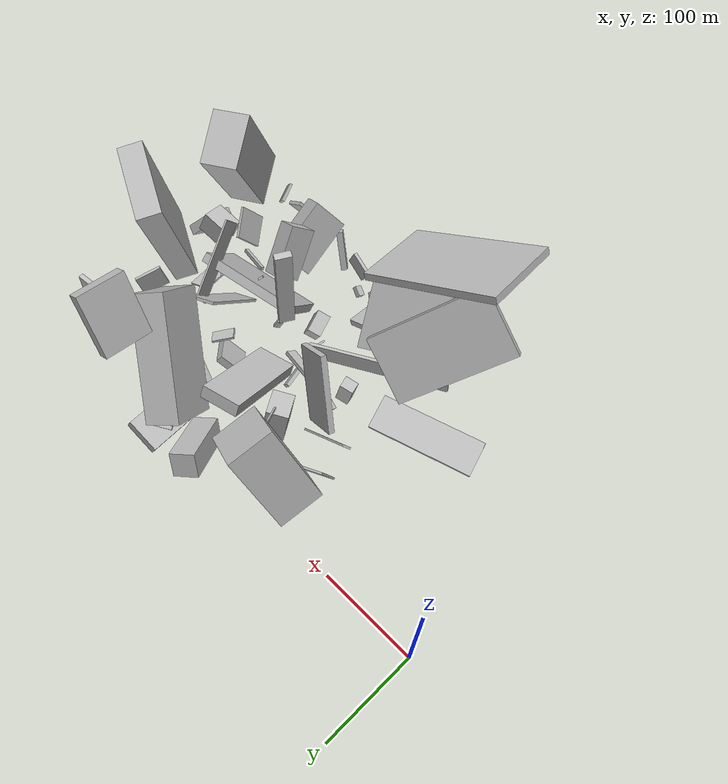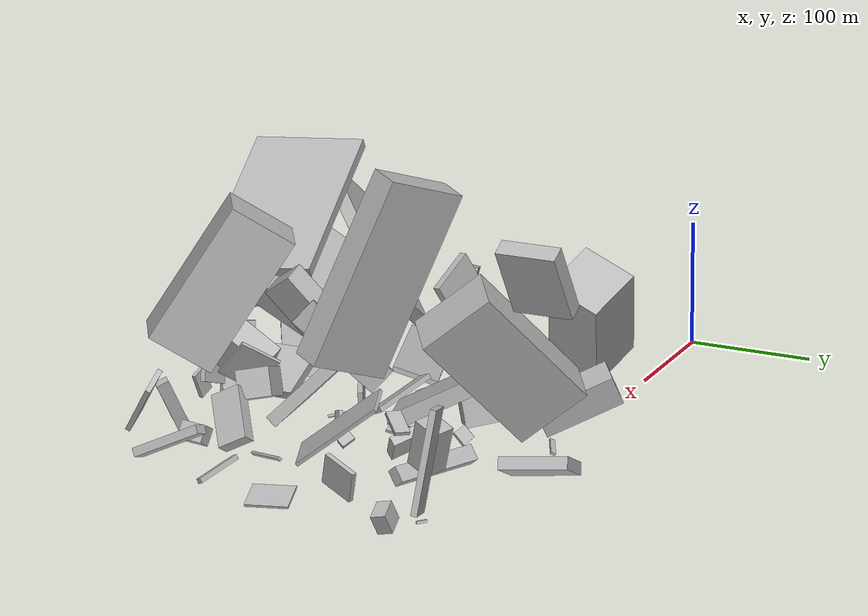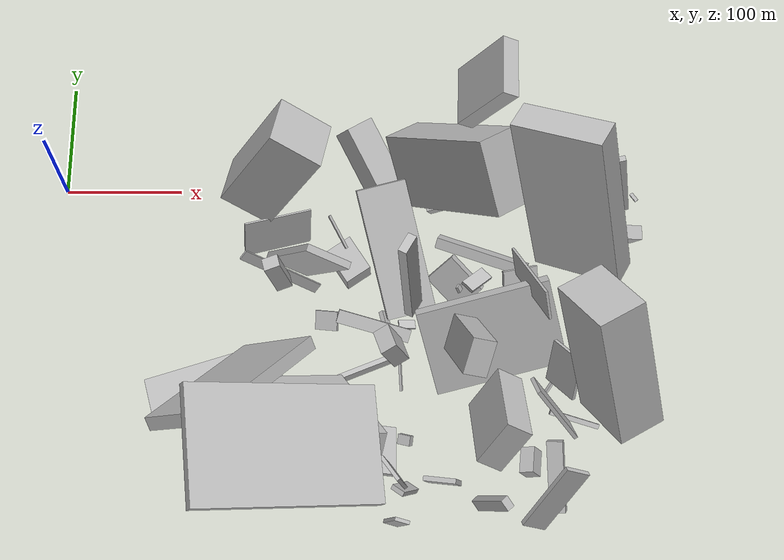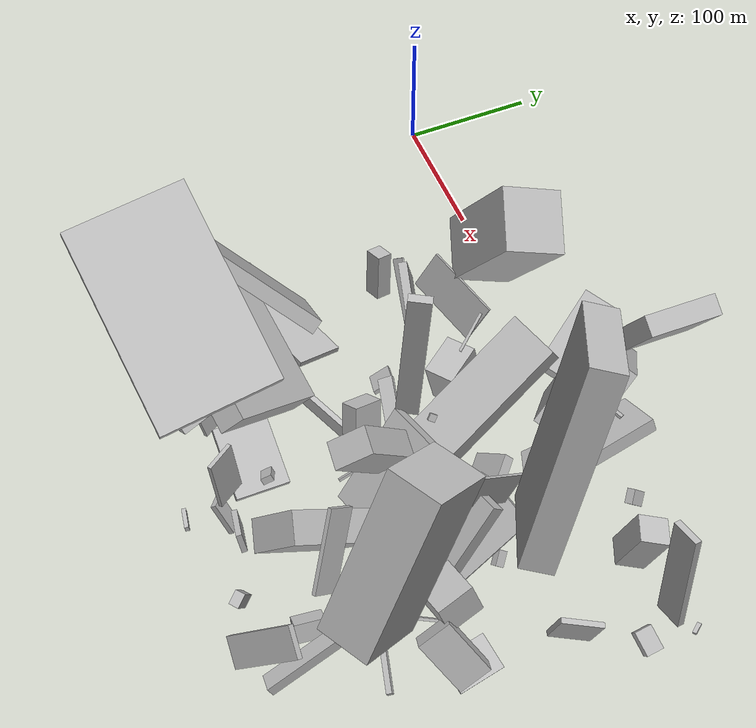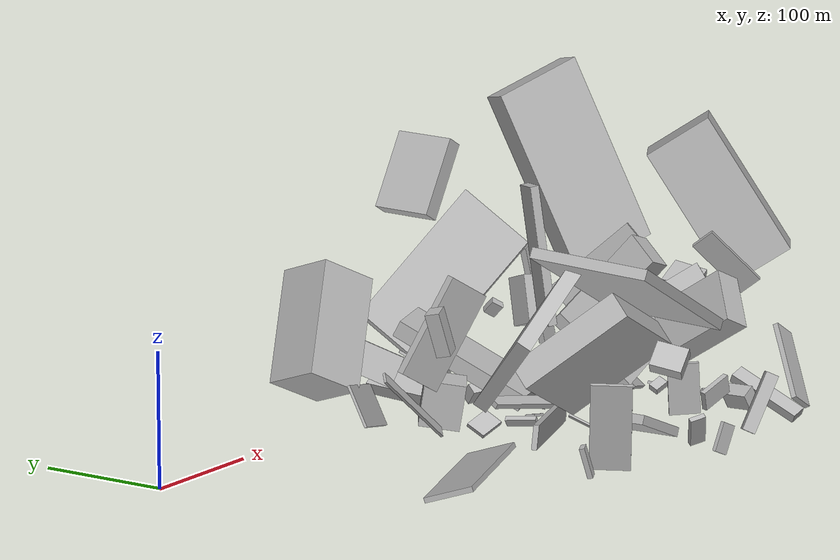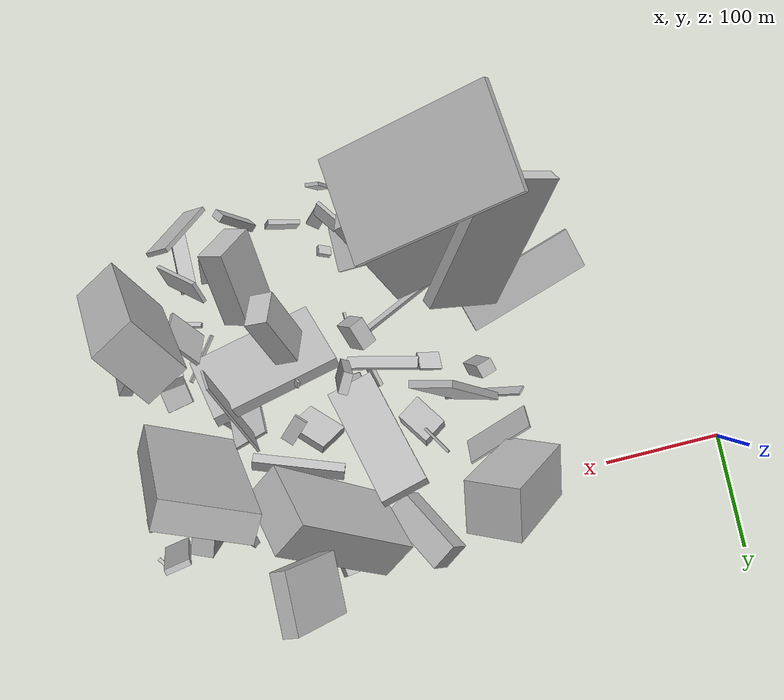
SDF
<sdf version="1.6">
 <world name="default">
  <model name="building_2">
   <static>0</static>
   <pose>370.53598087326293 -178.5250326139376 40.387487703427745 -0.2092710864256462 0.776438382309886 1.647568094168091</pose>
   <link name="link">
    <gravity>0</gravity>
    <pose>0 0 37.0 0 0 0</pose>
    <collision name="collision"><geometry><box><size>10 107 74</size></box></geometry></collision>
    <visual name="visual">
     <cast_shadows>0</cast_shadows>
     <geometry><box><size>10 107 74</size></box></geometry>
     <material>
      <script>
       <uri>model://HANNAS_wall/materials/scripts</uri>
       <uri>model://HANNAS_wall/materials/textures</uri>
       <name>vrc/HANNAS_wall</name>
      </script>
     </material>
    </visual>
   </link>
  </model>
  <model name="building_3">
   <static>0</static>
   <pose>342.60239375288876 -41.4275069649277 71.99341820973707 0.860662383341686 -0.31074108356621444 -2.53120176968325</pose>
   <link name="link">
    <gravity>0</gravity>
    <pose>0 0 31.0 0 0 0</pose>
    <collision name="collision"><geometry><box><size>35 123 62</size></box></geometry></collision>
    <visual name="visual">
     <cast_shadows>0</cast_shadows>
     <geometry><box><size>35 123 62</size></box></geometry>
     <material>
      <script>
       <uri>model://HANNAS_wall/materials/scripts</uri>
       <uri>model://HANNAS_wall/materials/textures</uri>
       <name>vrc/HANNAS_wall</name>
      </script>
     </material>
    </visual>
   </link>
  </model>
  <model name="building_7">
   <static>0</static>
   <pose>260.51255282791715 15.565260322514362 29.977483388126927 -0.23190532668931108 0.40965162509561115 -1.037882377212776</pose>
   <link name="link">
    <gravity>0</gravity>
    <pose>0 0 12.5 0 0 0</pose>
    <collision name="collision"><geometry><box><size>63 25 25</size></box></geometry></collision>
    <visual name="visual">
     <cast_shadows>0</cast_shadows>
     <geometry><box><size>63 25 25</size></box></geometry>
     <material>
      <script>
       <uri>model://HANNAS_wall/materials/scripts</uri>
       <uri>model://HANNAS_wall/materials/textures</uri>
       <name>vrc/HANNAS_wall</name>
      </script>
     </material>
    </visual>
   </link>
  </model>
  <model name="building_11">
   <static>0</static>
   <pose>190.39763875777464 12.69248213924936 71.6489953485627 0.928114544918503 -0.9965386384299176 0.38226683311756676</pose>
   <link name="link">
    <gravity>0</gravity>
    <pose>0 0 23.0 0 0 0</pose>
    <collision name="collision"><geometry><box><size>88 47 46</size></box></geometry></collision>
    <visual name="visual">
     <cast_shadows>0</cast_shadows>
     <geometry><box><size>88 47 46</size></box></geometry>
     <material>
      <script>
       <uri>model://HANNAS_wall/materials/scripts</uri>
       <uri>model://HANNAS_wall/materials/textures</uri>
       <name>vrc/HANNAS_wall</name>
      </script>
     </material>
    </visual>
   </link>
  </model>
  <model name="building_12">
   <static>0</static>
   <pose>192.65559945761757 -164.8150167388415 68.78255812723728 0.7744313595643079 -0.6766538514125365 -0.12413528434945402</pose>
   <link name="link">
    <gravity>0</gravity>
    <pose>0 0 62.0 0 0 0</pose>
    <collision name="collision"><geometry><box><size>71 11 124</size></box></geometry></collision>
    <visual name="visual">
     <cast_shadows>0</cast_shadows>
     <geometry><box><size>71 11 124</size></box></geometry>
     <material>
      <script>
       <uri>model://HANNAS_wall/materials/scripts</uri>
       <uri>model://HANNAS_wall/materials/textures</uri>
       <name>vrc/HANNAS_wall</name>
      </script>
     </material>
    </visual>
   </link>
  </model>
  <model name="building_13">
   <static>0</static>
   <pose>451.27176359276683 -227.3731676573134 108.29814430692676 -0.032161361023020134 -0.5696261096192541 -1.0396622802903253</pose>
   <link name="link">
    <gravity>0</gravity>
    <pose>0 0 58.5 0 0 0</pose>
    <collision name="collision"><geometry><box><size>54 37 117</size></box></geometry></collision>
    <visual name="visual">
     <cast_shadows>0</cast_shadows>
     <geometry><box><size>54 37 117</size></box></geometry>
     <material>
      <script>
       <uri>model://HANNAS_wall/materials/scripts</uri>
       <uri>model://HANNAS_wall/materials/textures</uri>
       <name>vrc/HANNAS_wall</name>
      </script>
     </material>
    </visual>
   </link>
  </model>
  <model name="building_21">
   <static>0</static>
   <pose>284.74256246130386 -236.24703722540053 16.35470775127789 -1.1855751277535895 0.00879005874944561 1.5630458018975113</pose>
   <link name="link">
    <gravity>0</gravity>
    <pose>0 0 26.0 0 0 0</pose>
    <collision name="collision"><geometry><box><size>39 7 52</size></box></geometry></collision>
    <visual name="visual">
     <cast_shadows>0</cast_shadows>
     <geometry><box><size>39 7 52</size></box></geometry>
     <material>
      <script>
       <uri>model://HANNAS_wall/materials/scripts</uri>
       <uri>model://HANNAS_wall/materials/textures</uri>
       <name>vrc/HANNAS_wall</name>
      </script>
     </material>
    </visual>
   </link>
  </model>
  <model name="building_23">
   <static>0</static>
   <pose>298.5047807039582 -134.69247498267328 78.65586288071418 -0.12396853511134127 0.05370361361767028 1.0615738624359394</pose>
   <link name="link">
    <gravity>0</gravity>
    <pose>0 0 53.0 0 0 0</pose>
    <collision name="collision"><geometry><box><size>16 7 106</size></box></geometry></collision>
    <visual name="visual">
     <cast_shadows>0</cast_shadows>
     <geometry><box><size>16 7 106</size></box></geometry>
     <material>
      <script>
       <uri>model://HANNAS_wall/materials/scripts</uri>
       <uri>model://HANNAS_wall/materials/textures</uri>
       <name>vrc/HANNAS_wall</name>
      </script>
     </material>
    </visual>
   </link>
  </model>
  <model name="building_26">
   <static>0</static>
   <pose>297.3748791144083 -270.2816454704114 19.715043487529577 -1.8548098669640398 -0.521139901863547 1.068378753391968</pose>
   <link name="link">
    <gravity>0</gravity>
    <pose>0 0 6.0 0 0 0</pose>
    <collision name="collision"><geometry><box><size>4 26 12</size></box></geometry></collision>
    <visual name="visual">
     <cast_shadows>0</cast_shadows>
     <geometry><box><size>4 26 12</size></box></geometry>
     <material>
      <script>
       <uri>model://HANNAS_wall/materials/scripts</uri>
       <uri>model://HANNAS_wall/materials/textures</uri>
       <name>vrc/HANNAS_wall</name>
      </script>
     </material>
    </visual>
   </link>
  </model>
  <model name="building_32">
   <static>0</static>
   <pose>197.98332001199577 -217.67548765249052 142.8872321464193 -1.654249190489673 -0.4386538305539814 -3.0145278928646904</pose>
   <link name="link">
    <gravity>0</gravity>
    <pose>0 0 44.5 0 0 0</pose>
    <collision name="collision"><geometry><box><size>150 8 89</size></box></geometry></collision>
    <visual name="visual">
     <cast_shadows>0</cast_shadows>
     <geometry><box><size>150 8 89</size></box></geometry>
     <material>
      <script>
       <uri>model://HANNAS_wall/materials/scripts</uri>
       <uri>model://HANNAS_wall/materials/textures</uri>
       <name>vrc/HANNAS_wall</name>
      </script>
     </material>
    </visual>
   </link>
  </model>
  <model name="building_37">
   <static>0</static>
   <pose>404.8815456990326 -110.85927440892421 34.14366245327488 0.7765079926108097 0.49243879553800746 -0.6857776716222765</pose>
   <link name="link">
    <gravity>0</gravity>
    <pose>0 0 3.5 0 0 0</pose>
    <collision name="collision"><geometry><box><size>11 5 7</size></box></geometry></collision>
    <visual name="visual">
     <cast_shadows>0</cast_shadows>
     <geometry><box><size>11 5 7</size></box></geometry>
     <material>
      <script>
       <uri>model://HANNAS_wall/materials/scripts</uri>
       <uri>model://HANNAS_wall/materials/textures</uri>
       <name>vrc/HANNAS_wall</name>
      </script>
     </material>
    </visual>
   </link>
  </model>
  <model name="building_49">
   <static>0</static>
   <pose>320.9487859835816 -267.03389192488333 39.93535608771478 1.178652634892157 -1.1845130402778448 -2.9077440429438486</pose>
   <link name="link">
    <gravity>0</gravity>
    <pose>0 0 2.0 0 0 0</pose>
    <collision name="collision"><geometry><box><size>15 27 4</size></box></geometry></collision>
    <visual name="visual">
     <cast_shadows>0</cast_shadows>
     <geometry><box><size>15 27 4</size></box></geometry>
     <material>
      <script>
       <uri>model://HANNAS_wall/materials/scripts</uri>
       <uri>model://HANNAS_wall/materials/textures</uri>
       <name>vrc/HANNAS_wall</name>
      </script>
     </material>
    </visual>
   </link>
  </model>
  <model name="building_52">
   <static>0</static>
   <pose>429.5534553948555 -105.84711818124406 103.94226147831314 -0.20047373564574383 -0.356093156924575 -0.44849057900501116</pose>
   <link name="link">
    <gravity>0</gravity>
    <pose>0 0 75.0 0 0 0</pose>
    <collision name="collision"><geometry><box><size>70 23 150</size></box></geometry></collision>
    <visual name="visual">
     <cast_shadows>0</cast_shadows>
     <geometry><box><size>70 23 150</size></box></geometry>
     <material>
      <script>
       <uri>model://HANNAS_wall/materials/scripts</uri>
       <uri>model://HANNAS_wall/materials/textures</uri>
       <name>vrc/HANNAS_wall</name>
      </script>
     </material>
    </visual>
   </link>
  </model>
  <model name="building_56">
   <static>0</static>
   <pose>257.33528861197857 -218.55975420019317 64.85705950147504 1.0268353768965743 -0.6498675365199744 -1.0564039076651814</pose>
   <link name="link">
    <gravity>0</gravity>
    <pose>0 0 48.0 0 0 0</pose>
    <collision name="collision"><geometry><box><size>89 21 96</size></box></geometry></collision>
    <visual name="visual">
     <cast_shadows>0</cast_shadows>
     <geometry><box><size>89 21 96</size></box></geometry>
     <material>
      <script>
       <uri>model://HANNAS_wall/materials/scripts</uri>
       <uri>model://HANNAS_wall/materials/textures</uri>
       <name>vrc/HANNAS_wall</name>
      </script>
     </material>
    </visual>
   </link>
  </model>
  <model name="building_60">
   <static>0</static>
   <pose>334.009690248206 -160.898185430694 93.36951843825224 0.6492658185666168 0.32001286338644147 -0.0782513143762032</pose>
   <link name="link">
    <gravity>0</gravity>
    <pose>0 0 26.5 0 0 0</pose>
    <collision name="collision"><geometry><box><size>19 29 53</size></box></geometry></collision>
    <visual name="visual">
     <cast_shadows>0</cast_shadows>
     <geometry><box><size>19 29 53</size></box></geometry>
     <material>
      <script>
       <uri>model://HANNAS_wall/materials/scripts</uri>
       <uri>model://HANNAS_wall/materials/textures</uri>
       <name>vrc/HANNAS_wall</name>
      </script>
     </material>
    </visual>
   </link>
  </model>
  <model name="building_61">
   <static>0</static>
   <pose>286.4204097564723 -156.9127805484295 19.52284518778989 0.6105004668334717 -1.4328426200253923 -0.19331418611890286</pose>
   <link name="link">
    <gravity>0</gravity>
    <pose>0 0 75.0 0 0 0</pose>
    <collision name="collision"><geometry><box><size>18 4 150</size></box></geometry></collision>
    <visual name="visual">
     <cast_shadows>0</cast_shadows>
     <geometry><box><size>18 4 150</size></box></geometry>
     <material>
      <script>
       <uri>model://HANNAS_wall/materials/scripts</uri>
       <uri>model://HANNAS_wall/materials/textures</uri>
       <name>vrc/HANNAS_wall</name>
      </script>
     </material>
    </visual>
   </link>
  </model>
  <model name="building_65">
   <static>0</static>
   <pose>432.44596103158807 -207.22400097175782 10.484632595496535 2.746742332050246 -0.16966712616448046 2.8877092308501147</pose>
   <link name="link">
    <gravity>0</gravity>
    <pose>0 0 2.0 0 0 0</pose>
    <collision name="collision"><geometry><box><size>42 4 4</size></box></geometry></collision>
    <visual name="visual">
     <cast_shadows>0</cast_shadows>
     <geometry><box><size>42 4 4</size></box></geometry>
     <material>
      <script>
       <uri>model://HANNAS_wall/materials/scripts</uri>
       <uri>model://HANNAS_wall/materials/textures</uri>
       <name>vrc/HANNAS_wall</name>
      </script>
     </material>
    </visual>
   </link>
  </model>
  <model name="building_67">
   <static>0</static>
   <pose>352.70728975081016 -237.0237890627676 67.66521607570807 0.6549221650286566 -0.4398067415809264 2.857754411655282</pose>
   <link name="link">
    <gravity>0</gravity>
    <pose>0 0 21.0 0 0 0</pose>
    <collision name="collision"><geometry><box><size>22 65 42</size></box></geometry></collision>
    <visual name="visual">
     <cast_shadows>0</cast_shadows>
     <geometry><box><size>22 65 42</size></box></geometry>
     <material>
      <script>
       <uri>model://HANNAS_wall/materials/scripts</uri>
       <uri>model://HANNAS_wall/materials/textures</uri>
       <name>vrc/HANNAS_wall</name>
      </script>
     </material>
    </visual>
   </link>
  </model>
  <model name="building_69">
   <static>0</static>
   <pose>188.27796335245407 -156.8519062071281 9.776418969186688 1.6844885207885718 1.2612347591043482 -1.162460556087153</pose>
   <link name="link">
    <gravity>0</gravity>
    <pose>0 0 55.5 0 0 0</pose>
    <collision name="collision"><geometry><box><size>4 37 111</size></box></geometry></collision>
    <visual name="visual">
     <cast_shadows>0</cast_shadows>
     <geometry><box><size>4 37 111</size></box></geometry>
     <material>
      <script>
       <uri>model://HANNAS_wall/materials/scripts</uri>
       <uri>model://HANNAS_wall/materials/textures</uri>
       <name>vrc/HANNAS_wall</name>
      </script>
     </material>
    </visual>
   </link>
  </model>
  <model name="building_72">
   <static>0</static>
   <pose>231.06967969531726 -100.43621534166671 73.13296865236329 1.0468549678400565 0.13727459754591634 -1.8732882482548863</pose>
   <link name="link">
    <gravity>0</gravity>
    <pose>0 0 19.5 0 0 0</pose>
    <collision name="collision"><geometry><box><size>6 79 39</size></box></geometry></collision>
    <visual name="visual">
     <cast_shadows>0</cast_shadows>
     <geometry><box><size>6 79 39</size></box></geometry>
     <material>
      <script>
       <uri>model://HANNAS_wall/materials/scripts</uri>
       <uri>model://HANNAS_wall/materials/textures</uri>
       <name>vrc/HANNAS_wall</name>
      </script>
     </material>
    </visual>
   </link>
  </model>
  <model name="building_74">
   <static>0</static>
   <pose>280.4753921716781 -124.16142786916669 8.45260010088886 -2.9950580482113254 -0.9058848081765043 -3.014260497745361</pose>
   <link name="link">
    <gravity>0</gravity>
    <pose>0 0 2.0 0 0 0</pose>
    <collision name="collision"><geometry><box><size>7 24 4</size></box></geometry></collision>
    <visual name="visual">
     <cast_shadows>0</cast_shadows>
     <geometry><box><size>7 24 4</size></box></geometry>
     <material>
      <script>
       <uri>model://HANNAS_wall/materials/scripts</uri>
       <uri>model://HANNAS_wall/materials/textures</uri>
       <name>vrc/HANNAS_wall</name>
      </script>
     </material>
    </visual>
   </link>
  </model>
  <model name="building_76">
   <static>0</static>
   <pose>286.62051017520344 -74.94060010370767 51.88302838144966 -2.664255351305102 -0.04366030333273139 0.2529902369752767</pose>
   <link name="link">
    <gravity>0</gravity>
    <pose>0 0 6.5 0 0 0</pose>
    <collision name="collision"><geometry><box><size>41 110 13</size></box></geometry></collision>
    <visual name="visual">
     <cast_shadows>0</cast_shadows>
     <geometry><box><size>41 110 13</size></box></geometry>
     <material>
      <script>
       <uri>model://HANNAS_wall/materials/scripts</uri>
       <uri>model://HANNAS_wall/materials/textures</uri>
       <name>vrc/HANNAS_wall</name>
      </script>
     </material>
    </visual>
   </link>
  </model>
  <model name="building_81">
   <static>0</static>
   <pose>267.9049571675668 -131.04369640170108 23.267037266874823 0.18546142197246185 -0.425313961932312 1.2600285920249903</pose>
   <link name="link">
    <gravity>0</gravity>
    <pose>0 0 2.0 0 0 0</pose>
    <collision name="collision"><geometry><box><size>11 62 4</size></box></geometry></collision>
    <visual name="visual">
     <cast_shadows>0</cast_shadows>
     <geometry><box><size>11 62 4</size></box></geometry>
     <material>
      <script>
       <uri>model://HANNAS_wall/materials/scripts</uri>
       <uri>model://HANNAS_wall/materials/textures</uri>
       <name>vrc/HANNAS_wall</name>
      </script>
     </material>
    </visual>
   </link>
  </model>
  <model name="building_82">
   <static>0</static>
   <pose>434.9569737012636 -38.29541255970408 59.866751531279455 -2.892799657661666 -1.2378907411383606 0.9427313499507214</pose>
   <link name="link">
    <gravity>0</gravity>
    <pose>0 0 10.5 0 0 0</pose>
    <collision name="collision"><geometry><box><size>38 19 21</size></box></geometry></collision>
    <visual name="visual">
     <cast_shadows>0</cast_shadows>
     <geometry><box><size>38 19 21</size></box></geometry>
     <material>
      <script>
       <uri>model://HANNAS_wall/materials/scripts</uri>
       <uri>model://HANNAS_wall/materials/textures</uri>
       <name>vrc/HANNAS_wall</name>
      </script>
     </material>
    </visual>
   </link>
  </model>
  <model name="building_103">
   <static>0</static>
   <pose>359.18633590871787 -65.87089761354629 14.409092041124344 3.089017653341033 -0.6787665125227379 1.2473484382402</pose>
   <link name="link">
    <gravity>0</gravity>
    <pose>0 0 6.5 0 0 0</pose>
    <collision name="collision"><geometry><box><size>9 80 13</size></box></geometry></collision>
    <visual name="visual">
     <cast_shadows>0</cast_shadows>
     <geometry><box><size>9 80 13</size></box></geometry>
     <material>
      <script>
       <uri>model://HANNAS_wall/materials/scripts</uri>
       <uri>model://HANNAS_wall/materials/textures</uri>
       <name>vrc/HANNAS_wall</name>
      </script>
     </material>
    </visual>
   </link>
  </model>
  <model name="building_109">
   <static>0</static>
   <pose>238.58134468987856 -62.42082662058763 24.848969303186898 -2.4177405352910255 -1.3720510608094183 -1.7074434025446192</pose>
   <link name="link">
    <gravity>0</gravity>
    <pose>0 0 15.5 0 0 0</pose>
    <collision name="collision"><geometry><box><size>36 23 31</size></box></geometry></collision>
    <visual name="visual">
     <cast_shadows>0</cast_shadows>
     <geometry><box><size>36 23 31</size></box></geometry>
     <material>
      <script>
       <uri>model://HANNAS_wall/materials/scripts</uri>
       <uri>model://HANNAS_wall/materials/textures</uri>
       <name>vrc/HANNAS_wall</name>
      </script>
     </material>
    </visual>
   </link>
  </model>
  <model name="building_114">
   <static>0</static>
   <pose>458.5723422840753 -19.517276054769635 54.203806730627164 0.6419470222206541 -1.343139591919606 2.649875202881982</pose>
   <link name="link">
    <gravity>0</gravity>
    <pose>0 0 10.5 0 0 0</pose>
    <collision name="collision"><geometry><box><size>80 5 21</size></box></geometry></collision>
    <visual name="visual">
     <cast_shadows>0</cast_shadows>
     <geometry><box><size>80 5 21</size></box></geometry>
     <material>
      <script>
       <uri>model://HANNAS_wall/materials/scripts</uri>
       <uri>model://HANNAS_wall/materials/textures</uri>
       <name>vrc/HANNAS_wall</name>
      </script>
     </material>
    </visual>
   </link>
  </model>
  <model name="building_116">
   <static>0</static>
   <pose>407.8649594581842 -278.0803869160525 43.457846965648436 -0.8295167075805079 0.7928625091750712 -2.301087452929459</pose>
   <link name="link">
    <gravity>0</gravity>
    <pose>0 0 2.0 0 0 0</pose>
    <collision name="collision"><geometry><box><size>64 22 4</size></box></geometry></collision>
    <visual name="visual">
     <cast_shadows>0</cast_shadows>
     <geometry><box><size>64 22 4</size></box></geometry>
     <material>
      <script>
       <uri>model://HANNAS_wall/materials/scripts</uri>
       <uri>model://HANNAS_wall/materials/textures</uri>
       <name>vrc/HANNAS_wall</name>
      </script>
     </material>
    </visual>
   </link>
  </model>
  <model name="building_118">
   <static>0</static>
   <pose>188.04995223446818 -89.59766283220873 30.222508520410617 0.7080748399359512 -0.7123022669736303 2.9866661430722856</pose>
   <link name="link">
    <gravity>0</gravity>
    <pose>0 0 4.5 0 0 0</pose>
    <collision name="collision"><geometry><box><size>80 2 9</size></box></geometry></collision>
    <visual name="visual">
     <cast_shadows>0</cast_shadows>
     <geometry><box><size>80 2 9</size></box></geometry>
     <material>
      <script>
       <uri>model://HANNAS_wall/materials/scripts</uri>
       <uri>model://HANNAS_wall/materials/textures</uri>
       <name>vrc/HANNAS_wall</name>
      </script>
     </material>
    </visual>
   </link>
  </model>
  <model name="building_119">
   <static>0</static>
   <pose>397.38606985548995 -245.16655347881283 12.578211755287144 0.550380481170373 -0.04606596870657157 -1.6761340988315654</pose>
   <link name="link">
    <gravity>0</gravity>
    <pose>0 0 7.0 0 0 0</pose>
    <collision name="collision"><geometry><box><size>21 12 14</size></box></geometry></collision>
    <visual name="visual">
     <cast_shadows>0</cast_shadows>
     <geometry><box><size>21 12 14</size></box></geometry>
     <material>
      <script>
       <uri>model://HANNAS_wall/materials/scripts</uri>
       <uri>model://HANNAS_wall/materials/textures</uri>
       <name>vrc/HANNAS_wall</name>
      </script>
     </material>
    </visual>
   </link>
  </model>
  <model name="building_125">
   <static>0</static>
   <pose>318.2268603939846 14.318373114272617 21.657811893746423 1.9803878089074847 -0.1402947387125557 -2.695132278771465</pose>
   <link name="link">
    <gravity>0</gravity>
    <pose>0 0 2.0 0 0 0</pose>
    <collision name="collision"><geometry><box><size>22 2 4</size></box></geometry></collision>
    <visual name="visual">
     <cast_shadows>0</cast_shadows>
     <geometry><box><size>22 2 4</size></box></geometry>
     <material>
      <script>
       <uri>model://HANNAS_wall/materials/scripts</uri>
       <uri>model://HANNAS_wall/materials/textures</uri>
       <name>vrc/HANNAS_wall</name>
      </script>
     </material>
    </visual>
   </link>
  </model>
  <model name="building_126">
   <static>0</static>
   <pose>453.1126568938541 -165.3912496192565 89.44211713110826 -2.5562649885647453 1.1765114662421141 0.7598507470126656</pose>
   <link name="link">
    <gravity>0</gravity>
    <pose>0 0 14.5 0 0 0</pose>
    <collision name="collision"><geometry><box><size>22 26 29</size></box></geometry></collision>
    <visual name="visual">
     <cast_shadows>0</cast_shadows>
     <geometry><box><size>22 26 29</size></box></geometry>
     <material>
      <script>
       <uri>model://HANNAS_wall/materials/scripts</uri>
       <uri>model://HANNAS_wall/materials/textures</uri>
       <name>vrc/HANNAS_wall</name>
      </script>
     </material>
    </visual>
   </link>
  </model>
  <model name="building_128">
   <static>0</static>
   <pose>346.1719247786018 12.15911301385571 17.32306783911874 2.0337858884233597 0.10798935543931551 -1.4278515756606247</pose>
   <link name="link">
    <gravity>0</gravity>
    <pose>0 0 18.5 0 0 0</pose>
    <collision name="collision"><geometry><box><size>54 10 37</size></box></geometry></collision>
    <visual name="visual">
     <cast_shadows>0</cast_shadows>
     <geometry><box><size>54 10 37</size></box></geometry>
     <material>
      <script>
       <uri>model://HANNAS_wall/materials/scripts</uri>
       <uri>model://HANNAS_wall/materials/textures</uri>
       <name>vrc/HANNAS_wall</name>
      </script>
     </material>
    </visual>
   </link>
  </model>
  <model name="building_135">
   <static>0</static>
   <pose>333.10904546117536 -133.4317989674117 112.2261921539237 0.5943534826577384 0.6263131080614015 3.0581155471517754</pose>
   <link name="link">
    <gravity>0</gravity>
    <pose>0 0 2.5 0 0 0</pose>
    <collision name="collision"><geometry><box><size>2 5 5</size></box></geometry></collision>
    <visual name="visual">
     <cast_shadows>0</cast_shadows>
     <geometry><box><size>2 5 5</size></box></geometry>
     <material>
      <script>
       <uri>model://HANNAS_wall/materials/scripts</uri>
       <uri>model://HANNAS_wall/materials/textures</uri>
       <name>vrc/HANNAS_wall</name>
      </script>
     </material>
    </visual>
   </link>
  </model>
  <model name="building_137">
   <static>0</static>
   <pose>439.45056433471933 -155.4624110025252 5.665524069252182 -3.014365027201158 -1.2815728716710653 0.04976569347910028</pose>
   <link name="link">
    <gravity>0</gravity>
    <pose>0 0 13.0 0 0 0</pose>
    <collision name="collision"><geometry><box><size>2 34 26</size></box></geometry></collision>
    <visual name="visual">
     <cast_shadows>0</cast_shadows>
     <geometry><box><size>2 34 26</size></box></geometry>
     <material>
      <script>
       <uri>model://HANNAS_wall/materials/scripts</uri>
       <uri>model://HANNAS_wall/materials/textures</uri>
       <name>vrc/HANNAS_wall</name>
      </script>
     </material>
    </visual>
   </link>
  </model>
  <model name="building_144">
   <static>0</static>
   <pose>338.9480671438995 19.85111088334514 137.12693681435633 0.019819244710396776 0.5062987919015216 -0.02445338523842664</pose>
   <link name="link">
    <gravity>0</gravity>
    <pose>0 0 31.0 0 0 0</pose>
    <collision name="collision"><geometry><box><size>14 48 62</size></box></geometry></collision>
    <visual name="visual">
     <cast_shadows>0</cast_shadows>
     <geometry><box><size>14 48 62</size></box></geometry>
     <material>
      <script>
       <uri>model://HANNAS_wall/materials/scripts</uri>
       <uri>model://HANNAS_wall/materials/textures</uri>
       <name>vrc/HANNAS_wall</name>
      </script>
     </material>
    </visual>
   </link>
  </model>
  <model name="building_146">
   <static>0</static>
   <pose>361.9505379692737 -87.00697995761274 30.85581027519701 -1.199101907006756 0.0471932560877839 2.3353773190573035</pose>
   <link name="link">
    <gravity>0</gravity>
    <pose>0 0 12.5 0 0 0</pose>
    <collision name="collision"><geometry><box><size>12 3 25</size></box></geometry></collision>
    <visual name="visual">
     <cast_shadows>0</cast_shadows>
     <geometry><box><size>12 3 25</size></box></geometry>
     <material>
      <script>
       <uri>model://HANNAS_wall/materials/scripts</uri>
       <uri>model://HANNAS_wall/materials/textures</uri>
       <name>vrc/HANNAS_wall</name>
      </script>
     </material>
    </visual>
   </link>
  </model>
  <model name="building_147">
   <static>0</static>
   <pose>479.94370528633596 -166.81425476661838 50.388523052576545 0.6638996711527927 0.484783906969444 -1.4799063071820702</pose>
   <link name="link">
    <gravity>0</gravity>
    <pose>0 0 21.5 0 0 0</pose>
    <collision name="collision"><geometry><box><size>24 11 43</size></box></geometry></collision>
    <visual name="visual">
     <cast_shadows>0</cast_shadows>
     <geometry><box><size>24 11 43</size></box></geometry>
     <material>
      <script>
       <uri>model://HANNAS_wall/materials/scripts</uri>
       <uri>model://HANNAS_wall/materials/textures</uri>
       <name>vrc/HANNAS_wall</name>
      </script>
     </material>
    </visual>
   </link>
  </model>
  <model name="building_149">
   <static>0</static>
   <pose>417.50186321291613 -171.9123369895649 18.242210269395162 0.7207291210612109 -0.20567203385130364 0.9504236583391906</pose>
   <link name="link">
    <gravity>0</gravity>
    <pose>0 0 1.5 0 0 0</pose>
    <collision name="collision"><geometry><box><size>44 2 3</size></box></geometry></collision>
    <visual name="visual">
     <cast_shadows>0</cast_shadows>
     <geometry><box><size>44 2 3</size></box></geometry>
     <material>
      <script>
       <uri>model://HANNAS_wall/materials/scripts</uri>
       <uri>model://HANNAS_wall/materials/textures</uri>
       <name>vrc/HANNAS_wall</name>
      </script>
     </material>
    </visual>
   </link>
  </model>
  <model name="building_152">
   <static>0</static>
   <pose>296.3146283322327 -124.51960838732715 8.937521033906016 2.966724439082381 -0.17796376982198311 -1.4801050338211403</pose>
   <link name="link">
    <gravity>0</gravity>
    <pose>0 0 1.0 0 0 0</pose>
    <collision name="collision"><geometry><box><size>8 14 2</size></box></geometry></collision>
    <visual name="visual">
     <cast_shadows>0</cast_shadows>
     <geometry><box><size>8 14 2</size></box></geometry>
     <material>
      <script>
       <uri>model://HANNAS_wall/materials/scripts</uri>
       <uri>model://HANNAS_wall/materials/textures</uri>
       <name>vrc/HANNAS_wall</name>
      </script>
     </material>
    </visual>
   </link>
  </model>
  <model name="building_158">
   <static>0</static>
   <pose>293.56790261216634 -233.3353677850125 45.1106413768591 -0.5071198553045364 -0.4001015123579612 1.4328404870865865</pose>
   <link name="link">
    <gravity>0</gravity>
    <pose>0 0 2.5 0 0 0</pose>
    <collision name="collision"><geometry><box><size>8 11 5</size></box></geometry></collision>
    <visual name="visual">
     <cast_shadows>0</cast_shadows>
     <geometry><box><size>8 11 5</size></box></geometry>
     <material>
      <script>
       <uri>model://HANNAS_wall/materials/scripts</uri>
       <uri>model://HANNAS_wall/materials/textures</uri>
       <name>vrc/HANNAS_wall</name>
      </script>
     </material>
    </visual>
   </link>
  </model>
  <model name="building_167">
   <static>0</static>
   <pose>229.27982787169017 -116.79693435324465 19.30939974545494 2.064813087117728 -0.36986194496305597 -0.2199185151420135</pose>
   <link name="link">
    <gravity>0</gravity>
    <pose>0 0 8.0 0 0 0</pose>
    <collision name="collision"><geometry><box><size>20 3 16</size></box></geometry></collision>
    <visual name="visual">
     <cast_shadows>0</cast_shadows>
     <geometry><box><size>20 3 16</size></box></geometry>
     <material>
      <script>
       <uri>model://HANNAS_wall/materials/scripts</uri>
       <uri>model://HANNAS_wall/materials/textures</uri>
       <name>vrc/HANNAS_wall</name>
      </script>
     </material>
    </visual>
   </link>
  </model>
  <model name="building_168">
   <static>0</static>
   <pose>214.05999832485415 -39.69256223830223 21.42686141552875 -1.1056359652020162 -1.0596929976014398 1.4964650384671858</pose>
   <link name="link">
    <gravity>0</gravity>
    <pose>0 0 29.5 0 0 0</pose>
    <collision name="collision"><geometry><box><size>33 2 59</size></box></geometry></collision>
    <visual name="visual">
     <cast_shadows>0</cast_shadows>
     <geometry><box><size>33 2 59</size></box></geometry>
     <material>
      <script>
       <uri>model://HANNAS_wall/materials/scripts</uri>
       <uri>model://HANNAS_wall/materials/textures</uri>
       <name>vrc/HANNAS_wall</name>
      </script>
     </material>
    </visual>
   </link>
  </model>
  <model name="building_170">
   <static>0</static>
   <pose>398.14257020153696 -220.5924109583425 112.57722580214947 0.8458223989044563 -0.37355012310938046 0.5251368986639302</pose>
   <link name="link">
    <gravity>0</gravity>
    <pose>0 0 9.5 0 0 0</pose>
    <collision name="collision"><geometry><box><size>3 55 19</size></box></geometry></collision>
    <visual name="visual">
     <cast_shadows>0</cast_shadows>
     <geometry><box><size>3 55 19</size></box></geometry>
     <material>
      <script>
       <uri>model://HANNAS_wall/materials/scripts</uri>
       <uri>model://HANNAS_wall/materials/textures</uri>
       <name>vrc/HANNAS_wall</name>
      </script>
     </material>
    </visual>
   </link>
  </model>
  <model name="building_173">
   <static>0</static>
   <pose>281.8614018730068 -261.8141981482112 50.14698588846269 1.3889429712996921 0.06542362119047165 2.1875611391715855</pose>
   <link name="link">
    <gravity>0</gravity>
    <pose>0 0 1.5 0 0 0</pose>
    <collision name="collision"><geometry><box><size>23 40 3</size></box></geometry></collision>
    <visual name="visual">
     <cast_shadows>0</cast_shadows>
     <geometry><box><size>23 40 3</size></box></geometry>
     <material>
      <script>
       <uri>model://HANNAS_wall/materials/scripts</uri>
       <uri>model://HANNAS_wall/materials/textures</uri>
       <name>vrc/HANNAS_wall</name>
      </script>
     </material>
    </visual>
   </link>
  </model>
  <model name="building_182">
   <static>0</static>
   <pose>388.39082034903424 -125.78412890705178 37.951544112036935 0.6945824199200381 0.214376795626982 0.27816873001566866</pose>
   <link name="link">
    <gravity>0</gravity>
    <pose>0 0 1.5 0 0 0</pose>
    <collision name="collision"><geometry><box><size>30 80 3</size></box></geometry></collision>
    <visual name="visual">
     <cast_shadows>0</cast_shadows>
     <geometry><box><size>30 80 3</size></box></geometry>
     <material>
      <script>
       <uri>model://HANNAS_wall/materials/scripts</uri>
       <uri>model://HANNAS_wall/materials/textures</uri>
       <name>vrc/HANNAS_wall</name>
      </script>
     </material>
    </visual>
   </link>
  </model>
  <model name="building_189">
   <static>0</static>
   <pose>486.4094207772579 -49.676193856773075 13.181087600127304 1.3369964973716615 -0.3938353614414411 -3.0172412610086825</pose>
   <link name="link">
    <gravity>0</gravity>
    <pose>0 0 6.0 0 0 0</pose>
    <collision name="collision"><geometry><box><size>17 17 12</size></box></geometry></collision>
    <visual name="visual">
     <cast_shadows>0</cast_shadows>
     <geometry><box><size>17 17 12</size></box></geometry>
     <material>
      <script>
       <uri>model://HANNAS_wall/materials/scripts</uri>
       <uri>model://HANNAS_wall/materials/textures</uri>
       <name>vrc/HANNAS_wall</name>
      </script>
     </material>
    </visual>
   </link>
  </model>
  <model name="building_196">
   <static>0</static>
   <pose>275.45711169575833 -163.77084013890754 58.99623496320346 -1.1621768493685296 -0.3761681361392153 -1.2758931065531365</pose>
   <link name="link">
    <gravity>0</gravity>
    <pose>0 0 7.0 0 0 0</pose>
    <collision name="collision"><geometry><box><size>23 23 14</size></box></geometry></collision>
    <visual name="visual">
     <cast_shadows>0</cast_shadows>
     <geometry><box><size>23 23 14</size></box></geometry>
     <material>
      <script>
       <uri>model://HANNAS_wall/materials/scripts</uri>
       <uri>model://HANNAS_wall/materials/textures</uri>
       <name>vrc/HANNAS_wall</name>
      </script>
     </material>
    </visual>
   </link>
  </model>
  <model name="building_199">
   <static>0</static>
   <pose>189.61322734238766 -105.31761635094398 89.4309797378377 -1.3675236581314216 0.21512130214866484 -2.8518226591982567</pose>
   <link name="link">
    <gravity>0</gravity>
    <pose>0 0 5.5 0 0 0</pose>
    <collision name="collision"><geometry><box><size>13 34 11</size></box></geometry></collision>
    <visual name="visual">
     <cast_shadows>0</cast_shadows>
     <geometry><box><size>13 34 11</size></box></geometry>
     <material>
      <script>
       <uri>model://HANNAS_wall/materials/scripts</uri>
       <uri>model://HANNAS_wall/materials/textures</uri>
       <name>vrc/HANNAS_wall</name>
      </script>
     </material>
    </visual>
   </link>
  </model>
  <model name="building_203">
   <static>0</static>
   <pose>335.7135831253708 -92.91234152841487 21.10413746197562 2.7253273552012147 0.7112133701368577 -2.616246870542023</pose>
   <link name="link">
    <gravity>0</gravity>
    <pose>0 0 4.0 0 0 0</pose>
    <collision name="collision"><geometry><box><size>30 37 8</size></box></geometry></collision>
    <visual name="visual">
     <cast_shadows>0</cast_shadows>
     <geometry><box><size>30 37 8</size></box></geometry>
     <material>
      <script>
       <uri>model://HANNAS_wall/materials/scripts</uri>
       <uri>model://HANNAS_wall/materials/textures</uri>
       <name>vrc/HANNAS_wall</name>
      </script>
     </material>
    </visual>
   </link>
  </model>
  <model name="building_204">
   <static>0</static>
   <pose>191.139737136277 -236.43781590996053 14.128342400246941 1.7888067678638904 -0.2261754491587815 -1.245826557527342</pose>
   <link name="link">
    <gravity>0</gravity>
    <pose>0 0 3.5 0 0 0</pose>
    <collision name="collision"><geometry><box><size>4 24 7</size></box></geometry></collision>
    <visual name="visual">
     <cast_shadows>0</cast_shadows>
     <geometry><box><size>4 24 7</size></box></geometry>
     <material>
      <script>
       <uri>model://HANNAS_wall/materials/scripts</uri>
       <uri>model://HANNAS_wall/materials/textures</uri>
       <name>vrc/HANNAS_wall</name>
      </script>
     </material>
    </visual>
   </link>
  </model>
  <model name="building_213">
   <static>0</static>
   <pose>291.24698749902024 -171.0333370802717 11.080196137199314 -2.557944114644613 0.9904390115257445 0.5629703180152623</pose>
   <link name="link">
    <gravity>0</gravity>
    <pose>0 0 1.0 0 0 0</pose>
    <collision name="collision"><geometry><box><size>2 24 2</size></box></geometry></collision>
    <visual name="visual">
     <cast_shadows>0</cast_shadows>
     <geometry><box><size>2 24 2</size></box></geometry>
     <material>
      <script>
       <uri>model://HANNAS_wall/materials/scripts</uri>
       <uri>model://HANNAS_wall/materials/textures</uri>
       <name>vrc/HANNAS_wall</name>
      </script>
     </material>
    </visual>
   </link>
  </model>
  <model name="building_219">
   <static>0</static>
   <pose>334.0420669425506 -150.956403794055 25.380617754841225 -2.7239567731761443 -1.1353432756476651 -2.6123066029115805</pose>
   <link name="link">
    <gravity>0</gravity>
    <pose>0 0 3.5 0 0 0</pose>
    <collision name="collision"><geometry><box><size>11 3 7</size></box></geometry></collision>
    <visual name="visual">
     <cast_shadows>0</cast_shadows>
     <geometry><box><size>11 3 7</size></box></geometry>
     <material>
      <script>
       <uri>model://HANNAS_wall/materials/scripts</uri>
       <uri>model://HANNAS_wall/materials/textures</uri>
       <name>vrc/HANNAS_wall</name>
      </script>
     </material>
    </visual>
   </link>
  </model>
  <model name="building_223">
   <static>0</static>
   <pose>465.65787389358695 -91.64743048675086 20.501605241308333 -0.28586752511543073 0.10816083348507889 -0.4050591522835656</pose>
   <link name="link">
    <gravity>0</gravity>
    <pose>0 0 12.5 0 0 0</pose>
    <collision name="collision"><geometry><box><size>4 30 25</size></box></geometry></collision>
    <visual name="visual">
     <cast_shadows>0</cast_shadows>
     <geometry><box><size>4 30 25</size></box></geometry>
     <material>
      <script>
       <uri>model://HANNAS_wall/materials/scripts</uri>
       <uri>model://HANNAS_wall/materials/textures</uri>
       <name>vrc/HANNAS_wall</name>
      </script>
     </material>
    </visual>
   </link>
  </model>
  <model name="building_225">
   <static>0</static>
   <pose>202.90062887041316 -248.29961183788876 37.7927983521852 1.8635718657620373 0.018613319970712583 -1.0427450132642009</pose>
   <link name="link">
    <gravity>0</gravity>
    <pose>0 0 1.5 0 0 0</pose>
    <collision name="collision"><geometry><box><size>30 70 3</size></box></geometry></collision>
    <visual name="visual">
     <cast_shadows>0</cast_shadows>
     <geometry><box><size>30 70 3</size></box></geometry>
     <material>
      <script>
       <uri>model://HANNAS_wall/materials/scripts</uri>
       <uri>model://HANNAS_wall/materials/textures</uri>
       <name>vrc/HANNAS_wall</name>
      </script>
     </material>
    </visual>
   </link>
  </model>
  <model name="building_226">
   <static>0</static>
   <pose>492.72217564822716 -11.141737369343225 17.652566004398498 0.10172867970843442 -0.18459730929350562 0.6240101943130356</pose>
   <link name="link">
    <gravity>0</gravity>
    <pose>0 0 1.0 0 0 0</pose>
    <collision name="collision"><geometry><box><size>3 8 2</size></box></geometry></collision>
    <visual name="visual">
     <cast_shadows>0</cast_shadows>
     <geometry><box><size>3 8 2</size></box></geometry>
     <material>
      <script>
       <uri>model://HANNAS_wall/materials/scripts</uri>
       <uri>model://HANNAS_wall/materials/textures</uri>
       <name>vrc/HANNAS_wall</name>
      </script>
     </material>
    </visual>
   </link>
  </model>
  <model name="building_228">
   <static>0</static>
   <pose>403.1652614461826 -14.01797952346098 57.71496273401403 -2.1799292226752836 0.4827376361188426 -2.5468501129170678</pose>
   <link name="link">
    <gravity>0</gravity>
    <pose>0 0 5.0 0 0 0</pose>
    <collision name="collision"><geometry><box><size>6 12 10</size></box></geometry></collision>
    <visual name="visual">
     <cast_shadows>0</cast_shadows>
     <geometry><box><size>6 12 10</size></box></geometry>
     <material>
      <script>
       <uri>model://HANNAS_wall/materials/scripts</uri>
       <uri>model://HANNAS_wall/materials/textures</uri>
       <name>vrc/HANNAS_wall</name>
      </script>
     </material>
    </visual>
   </link>
  </model>
  <model name="building_238">
   <static>0</static>
   <pose>389.97445713583795 -122.56121502306945 103.57235786348014 1.572456778828086 0.8450026766275739 -1.27631909470222</pose>
   <link name="link">
    <gravity>0</gravity>
    <pose>0 0 1.0 0 0 0</pose>
    <collision name="collision"><geometry><box><size>24 80 2</size></box></geometry></collision>
    <visual name="visual">
     <cast_shadows>0</cast_shadows>
     <geometry><box><size>24 80 2</size></box></geometry>
     <material>
      <script>
       <uri>model://HANNAS_wall/materials/scripts</uri>
       <uri>model://HANNAS_wall/materials/textures</uri>
       <name>vrc/HANNAS_wall</name>
      </script>
     </material>
    </visual>
   </link>
  </model>
  <model name="building_241">
   <static>0</static>
   <pose>238.63952248595035 -59.21308305077115 52.48296989620495 2.5790652302985797 -0.1695649744574696 -2.462710841446566</pose>
   <link name="link">
    <gravity>0</gravity>
    <pose>0 0 1.0 0 0 0</pose>
    <collision name="collision"><geometry><box><size>2 31 2</size></box></geometry></collision>
    <visual name="visual">
     <cast_shadows>0</cast_shadows>
     <geometry><box><size>2 31 2</size></box></geometry>
     <material>
      <script>
       <uri>model://HANNAS_wall/materials/scripts</uri>
       <uri>model://HANNAS_wall/materials/textures</uri>
       <name>vrc/HANNAS_wall</name>
      </script>
     </material>
    </visual>
   </link>
  </model>
  <model name="building_243">
   <static>0</static>
   <pose>412.6353460532127 -188.60338182442533 87.10003356027639 2.2389852834678257 -0.8574400782322136 1.4006811402164634</pose>
   <link name="link">
    <gravity>0</gravity>
    <pose>0 0 1.5 0 0 0</pose>
    <collision name="collision"><geometry><box><size>35 33 3</size></box></geometry></collision>
    <visual name="visual">
     <cast_shadows>0</cast_shadows>
     <geometry><box><size>35 33 3</size></box></geometry>
     <material>
      <script>
       <uri>model://HANNAS_wall/materials/scripts</uri>
       <uri>model://HANNAS_wall/materials/textures</uri>
       <name>vrc/HANNAS_wall</name>
      </script>
     </material>
    </visual>
   </link>
  </model>
  <model name="building_245">
   <static>0</static>
   <pose>286.2305542207789 -291.59173535478806 17.293619127775166 -1.605761931085865 1.1559077856644628 2.913241716193072</pose>
   <link name="link">
    <gravity>0</gravity>
    <pose>0 0 1.5 0 0 0</pose>
    <collision name="collision"><geometry><box><size>22 13 3</size></box></geometry></collision>
    <visual name="visual">
     <cast_shadows>0</cast_shadows>
     <geometry><box><size>22 13 3</size></box></geometry>
     <material>
      <script>
       <uri>model://HANNAS_wall/materials/scripts</uri>
       <uri>model://HANNAS_wall/materials/textures</uri>
       <name>vrc/HANNAS_wall</name>
      </script>
     </material>
    </visual>
   </link>
  </model>
  <model name="building_246">
   <static>0</static>
   <pose>251.2467574502516 -280.8899663862561 77.54892904231178 1.2972976641992369 0.8172137796250281 -3.070158019168648</pose>
   <link name="link">
    <gravity>0</gravity>
    <pose>0 0 12.0 0 0 0</pose>
    <collision name="collision"><geometry><box><size>20 11 24</size></box></geometry></collision>
    <visual name="visual">
     <cast_shadows>0</cast_shadows>
     <geometry><box><size>20 11 24</size></box></geometry>
     <material>
      <script>
       <uri>model://HANNAS_wall/materials/scripts</uri>
       <uri>model://HANNAS_wall/materials/textures</uri>
       <name>vrc/HANNAS_wall</name>
      </script>
     </material>
    </visual>
   </link>
  </model>
  <model name="building_249">
   <static>0</static>
   <pose>364.31011942062986 -283.3753895236057 23.83878012100494 -0.43909946312365766 -1.0952560033562864 -0.4217720988714545</pose>
   <link name="link">
    <gravity>0</gravity>
    <pose>0 0 5.0 0 0 0</pose>
    <collision name="collision"><geometry><box><size>46 7 10</size></box></geometry></collision>
    <visual name="visual">
     <cast_shadows>0</cast_shadows>
     <geometry><box><size>46 7 10</size></box></geometry>
     <material>
      <script>
       <uri>model://HANNAS_wall/materials/scripts</uri>
       <uri>model://HANNAS_wall/materials/textures</uri>
       <name>vrc/HANNAS_wall</name>
      </script>
     </material>
    </visual>
   </link>
  </model>
  <model name="building_256">
   <static>0</static>
   <pose>412.5252083772605 -229.95531351658613 30.21281501332357 -2.530821273415198 -1.004700162472727 -2.1947999612055007</pose>
   <link name="link">
    <gravity>0</gravity>
    <pose>0 0 29.0 0 0 0</pose>
    <collision name="collision"><geometry><box><size>7 13 58</size></box></geometry></collision>
    <visual name="visual">
     <cast_shadows>0</cast_shadows>
     <geometry><box><size>7 13 58</size></box></geometry>
     <material>
      <script>
       <uri>model://HANNAS_wall/materials/scripts</uri>
       <uri>model://HANNAS_wall/materials/textures</uri>
       <name>vrc/HANNAS_wall</name>
      </script>
     </material>
    </visual>
   </link>
  </model>
 </world>
</sdf>
